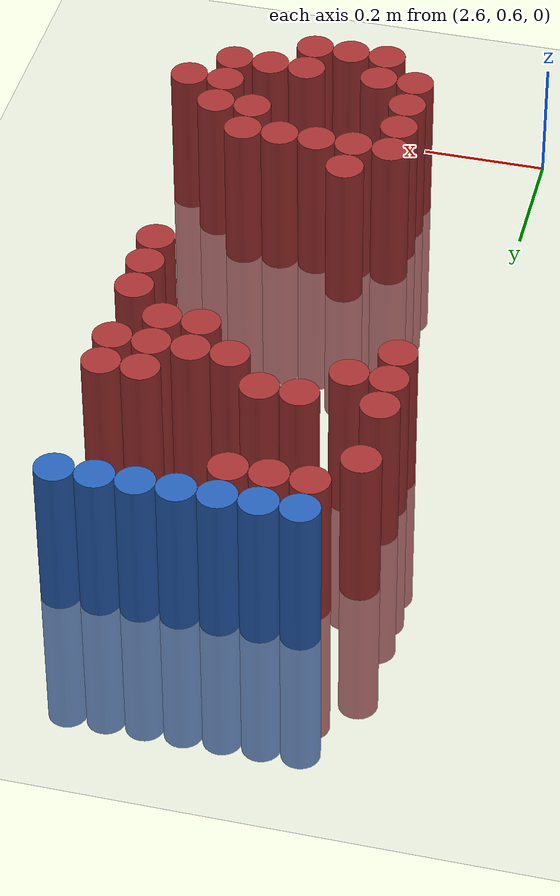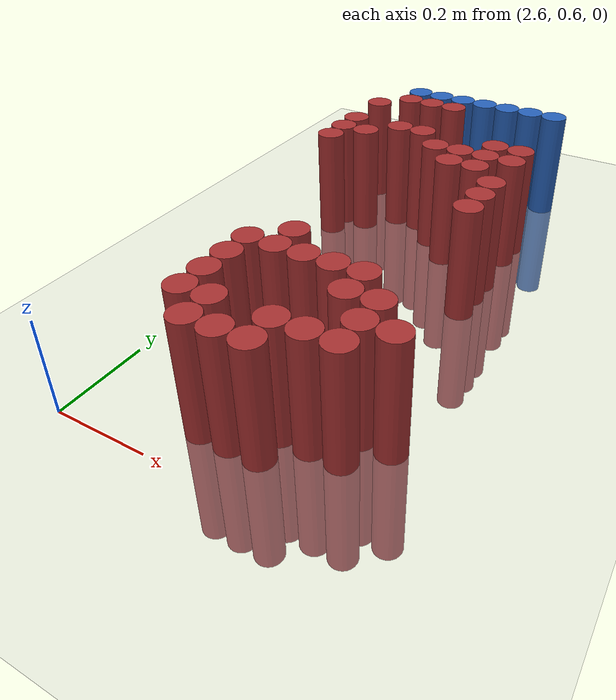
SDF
<sdf version="1.6">
 <world name="default">
  <model name="ground_plane">
   <static>1</static>
   <link name="link">
    <collision name="collision">
     <geometry><plane><normal>0 0 1</normal><size>100 100</size></plane></geometry>
     <surface><friction><ode><mu>100</mu><mu2>50</mu2></ode></friction></surface>
    </collision>
    <visual name="visual">
     <cast_shadows>0</cast_shadows>
     <geometry><plane><normal>0 0 1</normal><size>100 100</size></plane></geometry>
     <material>
      <script><uri>file://media/materials/scripts/gazebo.material</uri><name>Gazebo/Grey</name></script>
     </material>
    </visual>
   </link>
  </model>
  <model name="unit_cylinder_106">
   <static>1</static>
   <pose>2.730000 1.770000 0.000000 0.000000 0.000000 0.000000</pose>
   <link name="link">
    <inertial>
     <mass>1</mass>
     <inertia><ixx>0.145833</ixx><ixy>0</ixy><ixz>0</ixz><iyy>0.145833</iyy><iyz>0</iyz><izz>0.125</izz></inertia>
    </inertial>
    <collision name="collision">
     <geometry><cylinder><radius>0.030000</radius><length>0.5</length></cylinder></geometry>
    </collision>
    <visual name="visual">
     <geometry><cylinder><radius>0.030000</radius><length>0.5</length></cylinder></geometry>
     <material>
      <ambient>0.152000 0.379000 0.720000 1</ambient>
      <diffuse>0.152000 0.379000 0.720000 1</diffuse>
     </material>
     <material>
      <script><name>Gazebo/Grey</name><uri>file://media/materials/scripts/gazebo.material</uri></script>
     </material>
    </visual>
   </link>
  </model>
  <model name="unit_cylinder_107">
   <static>1</static>
   <pose>2.790000 1.770000 0.000000 0.000000 0.000000 0.000000</pose>
   <link name="link">
    <inertial>
     <mass>1</mass>
     <inertia><ixx>0.145833</ixx><ixy>0</ixy><ixz>0</ixz><iyy>0.145833</iyy><iyz>0</iyz><izz>0.125</izz></inertia>
    </inertial>
    <collision name="collision">
     <geometry><cylinder><radius>0.030000</radius><length>0.5</length></cylinder></geometry>
    </collision>
    <visual name="visual">
     <geometry><cylinder><radius>0.030000</radius><length>0.5</length></cylinder></geometry>
     <material>
      <ambient>0.152000 0.379000 0.720000 1</ambient>
      <diffuse>0.152000 0.379000 0.720000 1</diffuse>
     </material>
     <material>
      <script><name>Gazebo/Grey</name><uri>file://media/materials/scripts/gazebo.material</uri></script>
     </material>
    </visual>
   </link>
  </model>
  <model name="unit_cylinder_108">
   <static>1</static>
   <pose>2.850000 1.770000 0.000000 0.000000 0.000000 0.000000</pose>
   <link name="link">
    <inertial>
     <mass>1</mass>
     <inertia><ixx>0.145833</ixx><ixy>0</ixy><ixz>0</ixz><iyy>0.145833</iyy><iyz>0</iyz><izz>0.125</izz></inertia>
    </inertial>
    <collision name="collision">
     <geometry><cylinder><radius>0.030000</radius><length>0.5</length></cylinder></geometry>
    </collision>
    <visual name="visual">
     <geometry><cylinder><radius>0.030000</radius><length>0.5</length></cylinder></geometry>
     <material>
      <ambient>0.152000 0.379000 0.720000 1</ambient>
      <diffuse>0.152000 0.379000 0.720000 1</diffuse>
     </material>
     <material>
      <script><name>Gazebo/Grey</name><uri>file://media/materials/scripts/gazebo.material</uri></script>
     </material>
    </visual>
   </link>
  </model>
  <model name="unit_cylinder_109">
   <static>1</static>
   <pose>2.910000 1.770000 0.000000 0.000000 0.000000 0.000000</pose>
   <link name="link">
    <inertial>
     <mass>1</mass>
     <inertia><ixx>0.145833</ixx><ixy>0</ixy><ixz>0</ixz><iyy>0.145833</iyy><iyz>0</iyz><izz>0.125</izz></inertia>
    </inertial>
    <collision name="collision">
     <geometry><cylinder><radius>0.030000</radius><length>0.5</length></cylinder></geometry>
    </collision>
    <visual name="visual">
     <geometry><cylinder><radius>0.030000</radius><length>0.5</length></cylinder></geometry>
     <material>
      <ambient>0.152000 0.379000 0.720000 1</ambient>
      <diffuse>0.152000 0.379000 0.720000 1</diffuse>
     </material>
     <material>
      <script><name>Gazebo/Grey</name><uri>file://media/materials/scripts/gazebo.material</uri></script>
     </material>
    </visual>
   </link>
  </model>
  <model name="unit_cylinder_110">
   <static>1</static>
   <pose>2.970000 1.770000 0.000000 0.000000 0.000000 0.000000</pose>
   <link name="link">
    <inertial>
     <mass>1</mass>
     <inertia><ixx>0.145833</ixx><ixy>0</ixy><ixz>0</ixz><iyy>0.145833</iyy><iyz>0</iyz><izz>0.125</izz></inertia>
    </inertial>
    <collision name="collision">
     <geometry><cylinder><radius>0.030000</radius><length>0.5</length></cylinder></geometry>
    </collision>
    <visual name="visual">
     <geometry><cylinder><radius>0.030000</radius><length>0.5</length></cylinder></geometry>
     <material>
      <ambient>0.152000 0.379000 0.720000 1</ambient>
      <diffuse>0.152000 0.379000 0.720000 1</diffuse>
     </material>
     <material>
      <script><name>Gazebo/Grey</name><uri>file://media/materials/scripts/gazebo.material</uri></script>
     </material>
    </visual>
   </link>
  </model>
  <model name="unit_cylinder_111">
   <static>1</static>
   <pose>3.030000 1.770000 0.000000 0.000000 0.000000 0.000000</pose>
   <link name="link">
    <inertial>
     <mass>1</mass>
     <inertia><ixx>0.145833</ixx><ixy>0</ixy><ixz>0</ixz><iyy>0.145833</iyy><iyz>0</iyz><izz>0.125</izz></inertia>
    </inertial>
    <collision name="collision">
     <geometry><cylinder><radius>0.030000</radius><length>0.5</length></cylinder></geometry>
    </collision>
    <visual name="visual">
     <geometry><cylinder><radius>0.030000</radius><length>0.5</length></cylinder></geometry>
     <material>
      <ambient>0.152000 0.379000 0.720000 1</ambient>
      <diffuse>0.152000 0.379000 0.720000 1</diffuse>
     </material>
     <material>
      <script><name>Gazebo/Grey</name><uri>file://media/materials/scripts/gazebo.material</uri></script>
     </material>
    </visual>
   </link>
  </model>
  <model name="unit_cylinder_112">
   <static>1</static>
   <pose>3.090000 1.770000 0.000000 0.000000 0.000000 0.000000</pose>
   <link name="link">
    <inertial>
     <mass>1</mass>
     <inertia><ixx>0.145833</ixx><ixy>0</ixy><ixz>0</ixz><iyy>0.145833</iyy><iyz>0</iyz><izz>0.125</izz></inertia>
    </inertial>
    <collision name="collision">
     <geometry><cylinder><radius>0.030000</radius><length>0.5</length></cylinder></geometry>
    </collision>
    <visual name="visual">
     <geometry><cylinder><radius>0.030000</radius><length>0.5</length></cylinder></geometry>
     <material>
      <ambient>0.152000 0.379000 0.720000 1</ambient>
      <diffuse>0.152000 0.379000 0.720000 1</diffuse>
     </material>
     <material>
      <script><name>Gazebo/Grey</name><uri>file://media/materials/scripts/gazebo.material</uri></script>
     </material>
    </visual>
   </link>
  </model>
  <model name="unit_cylinder_129">
   <static>1</static>
   <pose>2.730000 1.710000 0.000000 0.000000 0.000000 0.000000</pose>
   <link name="link">
    <inertial>
     <mass>1</mass>
     <inertia><ixx>0.145833</ixx><ixy>0</ixy><ixz>0</ixz><iyy>0.145833</iyy><iyz>0</iyz><izz>0.125</izz></inertia>
    </inertial>
    <collision name="collision">
     <geometry><cylinder><radius>0.030000</radius><length>0.5</length></cylinder></geometry>
    </collision>
    <visual name="visual">
     <geometry><cylinder><radius>0.030000</radius><length>0.5</length></cylinder></geometry>
     <material>
      <ambient>0.648000 0.192000 0.192000 1</ambient>
      <diffuse>0.648000 0.192000 0.192000 1</diffuse>
     </material>
     <material>
      <script><name>Gazebo/Grey</name><uri>file://media/materials/scripts/gazebo.material</uri></script>
     </material>
    </visual>
   </link>
  </model>
  <model name="unit_cylinder_130">
   <static>1</static>
   <pose>2.790000 1.710000 0.000000 0.000000 0.000000 0.000000</pose>
   <link name="link">
    <inertial>
     <mass>1</mass>
     <inertia><ixx>0.145833</ixx><ixy>0</ixy><ixz>0</ixz><iyy>0.145833</iyy><iyz>0</iyz><izz>0.125</izz></inertia>
    </inertial>
    <collision name="collision">
     <geometry><cylinder><radius>0.030000</radius><length>0.5</length></cylinder></geometry>
    </collision>
    <visual name="visual">
     <geometry><cylinder><radius>0.030000</radius><length>0.5</length></cylinder></geometry>
     <material>
      <ambient>0.648000 0.192000 0.192000 1</ambient>
      <diffuse>0.648000 0.192000 0.192000 1</diffuse>
     </material>
     <material>
      <script><name>Gazebo/Grey</name><uri>file://media/materials/scripts/gazebo.material</uri></script>
     </material>
    </visual>
   </link>
  </model>
  <model name="unit_cylinder_131">
   <static>1</static>
   <pose>2.850000 1.710000 0.000000 0.000000 0.000000 0.000000</pose>
   <link name="link">
    <inertial>
     <mass>1</mass>
     <inertia><ixx>0.145833</ixx><ixy>0</ixy><ixz>0</ixz><iyy>0.145833</iyy><iyz>0</iyz><izz>0.125</izz></inertia>
    </inertial>
    <collision name="collision">
     <geometry><cylinder><radius>0.030000</radius><length>0.5</length></cylinder></geometry>
    </collision>
    <visual name="visual">
     <geometry><cylinder><radius>0.030000</radius><length>0.5</length></cylinder></geometry>
     <material>
      <ambient>0.648000 0.192000 0.192000 1</ambient>
      <diffuse>0.648000 0.192000 0.192000 1</diffuse>
     </material>
     <material>
      <script><name>Gazebo/Grey</name><uri>file://media/materials/scripts/gazebo.material</uri></script>
     </material>
    </visual>
   </link>
  </model>
  <model name="unit_cylinder_141">
   <static>1</static>
   <pose>2.670000 1.650000 0.000000 0.000000 0.000000 0.000000</pose>
   <link name="link">
    <inertial>
     <mass>1</mass>
     <inertia><ixx>0.145833</ixx><ixy>0</ixy><ixz>0</ixz><iyy>0.145833</iyy><iyz>0</iyz><izz>0.125</izz></inertia>
    </inertial>
    <collision name="collision">
     <geometry><cylinder><radius>0.030000</radius><length>0.5</length></cylinder></geometry>
    </collision>
    <visual name="visual">
     <geometry><cylinder><radius>0.030000</radius><length>0.5</length></cylinder></geometry>
     <material>
      <ambient>0.648000 0.192000 0.192000 1</ambient>
      <diffuse>0.648000 0.192000 0.192000 1</diffuse>
     </material>
     <material>
      <script><name>Gazebo/Grey</name><uri>file://media/materials/scripts/gazebo.material</uri></script>
     </material>
    </visual>
   </link>
  </model>
  <model name="unit_cylinder_148">
   <static>1</static>
   <pose>2.670000 1.530000 0.000000 0.000000 0.000000 0.000000</pose>
   <link name="link">
    <inertial>
     <mass>1</mass>
     <inertia><ixx>0.145833</ixx><ixy>0</ixy><ixz>0</ixz><iyy>0.145833</iyy><iyz>0</iyz><izz>0.125</izz></inertia>
    </inertial>
    <collision name="collision">
     <geometry><cylinder><radius>0.030000</radius><length>0.5</length></cylinder></geometry>
    </collision>
    <visual name="visual">
     <geometry><cylinder><radius>0.030000</radius><length>0.5</length></cylinder></geometry>
     <material>
      <ambient>0.648000 0.192000 0.192000 1</ambient>
      <diffuse>0.648000 0.192000 0.192000 1</diffuse>
     </material>
     <material>
      <script><name>Gazebo/Grey</name><uri>file://media/materials/scripts/gazebo.material</uri></script>
     </material>
    </visual>
   </link>
  </model>
  <model name="unit_cylinder_149">
   <static>1</static>
   <pose>2.790000 1.530000 0.000000 0.000000 0.000000 0.000000</pose>
   <link name="link">
    <inertial>
     <mass>1</mass>
     <inertia><ixx>0.145833</ixx><ixy>0</ixy><ixz>0</ixz><iyy>0.145833</iyy><iyz>0</iyz><izz>0.125</izz></inertia>
    </inertial>
    <collision name="collision">
     <geometry><cylinder><radius>0.030000</radius><length>0.5</length></cylinder></geometry>
    </collision>
    <visual name="visual">
     <geometry><cylinder><radius>0.030000</radius><length>0.5</length></cylinder></geometry>
     <material>
      <ambient>0.648000 0.192000 0.192000 1</ambient>
      <diffuse>0.648000 0.192000 0.192000 1</diffuse>
     </material>
     <material>
      <script><name>Gazebo/Grey</name><uri>file://media/materials/scripts/gazebo.material</uri></script>
     </material>
    </visual>
   </link>
  </model>
  <model name="unit_cylinder_150">
   <static>1</static>
   <pose>2.850000 1.530000 0.000000 0.000000 0.000000 0.000000</pose>
   <link name="link">
    <inertial>
     <mass>1</mass>
     <inertia><ixx>0.145833</ixx><ixy>0</ixy><ixz>0</ixz><iyy>0.145833</iyy><iyz>0</iyz><izz>0.125</izz></inertia>
    </inertial>
    <collision name="collision">
     <geometry><cylinder><radius>0.030000</radius><length>0.5</length></cylinder></geometry>
    </collision>
    <visual name="visual">
     <geometry><cylinder><radius>0.030000</radius><length>0.5</length></cylinder></geometry>
     <material>
      <ambient>0.648000 0.192000 0.192000 1</ambient>
      <diffuse>0.648000 0.192000 0.192000 1</diffuse>
     </material>
     <material>
      <script><name>Gazebo/Grey</name><uri>file://media/materials/scripts/gazebo.material</uri></script>
     </material>
    </visual>
   </link>
  </model>
  <model name="unit_cylinder_151">
   <static>1</static>
   <pose>3.030000 1.530000 0.000000 0.000000 0.000000 0.000000</pose>
   <link name="link">
    <inertial>
     <mass>1</mass>
     <inertia><ixx>0.145833</ixx><ixy>0</ixy><ixz>0</ixz><iyy>0.145833</iyy><iyz>0</iyz><izz>0.125</izz></inertia>
    </inertial>
    <collision name="collision">
     <geometry><cylinder><radius>0.030000</radius><length>0.5</length></cylinder></geometry>
    </collision>
    <visual name="visual">
     <geometry><cylinder><radius>0.030000</radius><length>0.5</length></cylinder></geometry>
     <material>
      <ambient>0.648000 0.192000 0.192000 1</ambient>
      <diffuse>0.648000 0.192000 0.192000 1</diffuse>
     </material>
     <material>
      <script><name>Gazebo/Grey</name><uri>file://media/materials/scripts/gazebo.material</uri></script>
     </material>
    </visual>
   </link>
  </model>
  <model name="unit_cylinder_152">
   <static>1</static>
   <pose>3.090000 1.530000 0.000000 0.000000 0.000000 0.000000</pose>
   <link name="link">
    <inertial>
     <mass>1</mass>
     <inertia><ixx>0.145833</ixx><ixy>0</ixy><ixz>0</ixz><iyy>0.145833</iyy><iyz>0</iyz><izz>0.125</izz></inertia>
    </inertial>
    <collision name="collision">
     <geometry><cylinder><radius>0.030000</radius><length>0.5</length></cylinder></geometry>
    </collision>
    <visual name="visual">
     <geometry><cylinder><radius>0.030000</radius><length>0.5</length></cylinder></geometry>
     <material>
      <ambient>0.648000 0.192000 0.192000 1</ambient>
      <diffuse>0.648000 0.192000 0.192000 1</diffuse>
     </material>
     <material>
      <script><name>Gazebo/Grey</name><uri>file://media/materials/scripts/gazebo.material</uri></script>
     </material>
    </visual>
   </link>
  </model>
  <model name="unit_cylinder_160">
   <static>1</static>
   <pose>2.670000 1.470000 0.000000 0.000000 0.000000 0.000000</pose>
   <link name="link">
    <inertial>
     <mass>1</mass>
     <inertia><ixx>0.145833</ixx><ixy>0</ixy><ixz>0</ixz><iyy>0.145833</iyy><iyz>0</iyz><izz>0.125</izz></inertia>
    </inertial>
    <collision name="collision">
     <geometry><cylinder><radius>0.030000</radius><length>0.5</length></cylinder></geometry>
    </collision>
    <visual name="visual">
     <geometry><cylinder><radius>0.030000</radius><length>0.5</length></cylinder></geometry>
     <material>
      <ambient>0.648000 0.192000 0.192000 1</ambient>
      <diffuse>0.648000 0.192000 0.192000 1</diffuse>
     </material>
     <material>
      <script><name>Gazebo/Grey</name><uri>file://media/materials/scripts/gazebo.material</uri></script>
     </material>
    </visual>
   </link>
  </model>
  <model name="unit_cylinder_161">
   <static>1</static>
   <pose>2.730000 1.470000 0.000000 0.000000 0.000000 0.000000</pose>
   <link name="link">
    <inertial>
     <mass>1</mass>
     <inertia><ixx>0.145833</ixx><ixy>0</ixy><ixz>0</ixz><iyy>0.145833</iyy><iyz>0</iyz><izz>0.125</izz></inertia>
    </inertial>
    <collision name="collision">
     <geometry><cylinder><radius>0.030000</radius><length>0.5</length></cylinder></geometry>
    </collision>
    <visual name="visual">
     <geometry><cylinder><radius>0.030000</radius><length>0.5</length></cylinder></geometry>
     <material>
      <ambient>0.648000 0.192000 0.192000 1</ambient>
      <diffuse>0.648000 0.192000 0.192000 1</diffuse>
     </material>
     <material>
      <script><name>Gazebo/Grey</name><uri>file://media/materials/scripts/gazebo.material</uri></script>
     </material>
    </visual>
   </link>
  </model>
  <model name="unit_cylinder_162">
   <static>1</static>
   <pose>2.910000 1.470000 0.000000 0.000000 0.000000 0.000000</pose>
   <link name="link">
    <inertial>
     <mass>1</mass>
     <inertia><ixx>0.145833</ixx><ixy>0</ixy><ixz>0</ixz><iyy>0.145833</iyy><iyz>0</iyz><izz>0.125</izz></inertia>
    </inertial>
    <collision name="collision">
     <geometry><cylinder><radius>0.030000</radius><length>0.5</length></cylinder></geometry>
    </collision>
    <visual name="visual">
     <geometry><cylinder><radius>0.030000</radius><length>0.5</length></cylinder></geometry>
     <material>
      <ambient>0.648000 0.192000 0.192000 1</ambient>
      <diffuse>0.648000 0.192000 0.192000 1</diffuse>
     </material>
     <material>
      <script><name>Gazebo/Grey</name><uri>file://media/materials/scripts/gazebo.material</uri></script>
     </material>
    </visual>
   </link>
  </model>
  <model name="unit_cylinder_163">
   <static>1</static>
   <pose>2.970000 1.470000 0.000000 0.000000 0.000000 0.000000</pose>
   <link name="link">
    <inertial>
     <mass>1</mass>
     <inertia><ixx>0.145833</ixx><ixy>0</ixy><ixz>0</ixz><iyy>0.145833</iyy><iyz>0</iyz><izz>0.125</izz></inertia>
    </inertial>
    <collision name="collision">
     <geometry><cylinder><radius>0.030000</radius><length>0.5</length></cylinder></geometry>
    </collision>
    <visual name="visual">
     <geometry><cylinder><radius>0.030000</radius><length>0.5</length></cylinder></geometry>
     <material>
      <ambient>0.648000 0.192000 0.192000 1</ambient>
      <diffuse>0.648000 0.192000 0.192000 1</diffuse>
     </material>
     <material>
      <script><name>Gazebo/Grey</name><uri>file://media/materials/scripts/gazebo.material</uri></script>
     </material>
    </visual>
   </link>
  </model>
  <model name="unit_cylinder_164">
   <static>1</static>
   <pose>3.030000 1.470000 0.000000 0.000000 0.000000 0.000000</pose>
   <link name="link">
    <inertial>
     <mass>1</mass>
     <inertia><ixx>0.145833</ixx><ixy>0</ixy><ixz>0</ixz><iyy>0.145833</iyy><iyz>0</iyz><izz>0.125</izz></inertia>
    </inertial>
    <collision name="collision">
     <geometry><cylinder><radius>0.030000</radius><length>0.5</length></cylinder></geometry>
    </collision>
    <visual name="visual">
     <geometry><cylinder><radius>0.030000</radius><length>0.5</length></cylinder></geometry>
     <material>
      <ambient>0.648000 0.192000 0.192000 1</ambient>
      <diffuse>0.648000 0.192000 0.192000 1</diffuse>
     </material>
     <material>
      <script><name>Gazebo/Grey</name><uri>file://media/materials/scripts/gazebo.material</uri></script>
     </material>
    </visual>
   </link>
  </model>
  <model name="unit_cylinder_165">
   <static>1</static>
   <pose>3.090000 1.470000 0.000000 0.000000 0.000000 0.000000</pose>
   <link name="link">
    <inertial>
     <mass>1</mass>
     <inertia><ixx>0.145833</ixx><ixy>0</ixy><ixz>0</ixz><iyy>0.145833</iyy><iyz>0</iyz><izz>0.125</izz></inertia>
    </inertial>
    <collision name="collision">
     <geometry><cylinder><radius>0.030000</radius><length>0.5</length></cylinder></geometry>
    </collision>
    <visual name="visual">
     <geometry><cylinder><radius>0.030000</radius><length>0.5</length></cylinder></geometry>
     <material>
      <ambient>0.648000 0.192000 0.192000 1</ambient>
      <diffuse>0.648000 0.192000 0.192000 1</diffuse>
     </material>
     <material>
      <script><name>Gazebo/Grey</name><uri>file://media/materials/scripts/gazebo.material</uri></script>
     </material>
    </visual>
   </link>
  </model>
  <model name="unit_cylinder_171">
   <static>1</static>
   <pose>2.670000 1.410000 0.000000 0.000000 0.000000 0.000000</pose>
   <link name="link">
    <inertial>
     <mass>1</mass>
     <inertia><ixx>0.145833</ixx><ixy>0</ixy><ixz>0</ixz><iyy>0.145833</iyy><iyz>0</iyz><izz>0.125</izz></inertia>
    </inertial>
    <collision name="collision">
     <geometry><cylinder><radius>0.030000</radius><length>0.5</length></cylinder></geometry>
    </collision>
    <visual name="visual">
     <geometry><cylinder><radius>0.030000</radius><length>0.5</length></cylinder></geometry>
     <material>
      <ambient>0.648000 0.192000 0.192000 1</ambient>
      <diffuse>0.648000 0.192000 0.192000 1</diffuse>
     </material>
     <material>
      <script><name>Gazebo/Grey</name><uri>file://media/materials/scripts/gazebo.material</uri></script>
     </material>
    </visual>
   </link>
  </model>
  <model name="unit_cylinder_172">
   <static>1</static>
   <pose>2.970000 1.410000 0.000000 0.000000 0.000000 0.000000</pose>
   <link name="link">
    <inertial>
     <mass>1</mass>
     <inertia><ixx>0.145833</ixx><ixy>0</ixy><ixz>0</ixz><iyy>0.145833</iyy><iyz>0</iyz><izz>0.125</izz></inertia>
    </inertial>
    <collision name="collision">
     <geometry><cylinder><radius>0.030000</radius><length>0.5</length></cylinder></geometry>
    </collision>
    <visual name="visual">
     <geometry><cylinder><radius>0.030000</radius><length>0.5</length></cylinder></geometry>
     <material>
      <ambient>0.648000 0.192000 0.192000 1</ambient>
      <diffuse>0.648000 0.192000 0.192000 1</diffuse>
     </material>
     <material>
      <script><name>Gazebo/Grey</name><uri>file://media/materials/scripts/gazebo.material</uri></script>
     </material>
    </visual>
   </link>
  </model>
  <model name="unit_cylinder_173">
   <static>1</static>
   <pose>3.030000 1.410000 0.000000 0.000000 0.000000 0.000000</pose>
   <link name="link">
    <inertial>
     <mass>1</mass>
     <inertia><ixx>0.145833</ixx><ixy>0</ixy><ixz>0</ixz><iyy>0.145833</iyy><iyz>0</iyz><izz>0.125</izz></inertia>
    </inertial>
    <collision name="collision">
     <geometry><cylinder><radius>0.030000</radius><length>0.5</length></cylinder></geometry>
    </collision>
    <visual name="visual">
     <geometry><cylinder><radius>0.030000</radius><length>0.5</length></cylinder></geometry>
     <material>
      <ambient>0.648000 0.192000 0.192000 1</ambient>
      <diffuse>0.648000 0.192000 0.192000 1</diffuse>
     </material>
     <material>
      <script><name>Gazebo/Grey</name><uri>file://media/materials/scripts/gazebo.material</uri></script>
     </material>
    </visual>
   </link>
  </model>
  <model name="unit_cylinder_175">
   <static>1</static>
   <pose>3.090000 1.350000 0.000000 0.000000 0.000000 0.000000</pose>
   <link name="link">
    <inertial>
     <mass>1</mass>
     <inertia><ixx>0.145833</ixx><ixy>0</ixy><ixz>0</ixz><iyy>0.145833</iyy><iyz>0</iyz><izz>0.125</izz></inertia>
    </inertial>
    <collision name="collision">
     <geometry><cylinder><radius>0.030000</radius><length>0.5</length></cylinder></geometry>
    </collision>
    <visual name="visual">
     <geometry><cylinder><radius>0.030000</radius><length>0.5</length></cylinder></geometry>
     <material>
      <ambient>0.648000 0.192000 0.192000 1</ambient>
      <diffuse>0.648000 0.192000 0.192000 1</diffuse>
     </material>
     <material>
      <script><name>Gazebo/Grey</name><uri>file://media/materials/scripts/gazebo.material</uri></script>
     </material>
    </visual>
   </link>
  </model>
  <model name="unit_cylinder_178">
   <static>1</static>
   <pose>3.090000 1.290000 0.000000 0.000000 0.000000 0.000000</pose>
   <link name="link">
    <inertial>
     <mass>1</mass>
     <inertia><ixx>0.145833</ixx><ixy>0</ixy><ixz>0</ixz><iyy>0.145833</iyy><iyz>0</iyz><izz>0.125</izz></inertia>
    </inertial>
    <collision name="collision">
     <geometry><cylinder><radius>0.030000</radius><length>0.5</length></cylinder></geometry>
    </collision>
    <visual name="visual">
     <geometry><cylinder><radius>0.030000</radius><length>0.5</length></cylinder></geometry>
     <material>
      <ambient>0.648000 0.192000 0.192000 1</ambient>
      <diffuse>0.648000 0.192000 0.192000 1</diffuse>
     </material>
     <material>
      <script><name>Gazebo/Grey</name><uri>file://media/materials/scripts/gazebo.material</uri></script>
     </material>
    </visual>
   </link>
  </model>
  <model name="unit_cylinder_182">
   <static>1</static>
   <pose>3.090000 1.230000 0.000000 0.000000 0.000000 0.000000</pose>
   <link name="link">
    <inertial>
     <mass>1</mass>
     <inertia><ixx>0.145833</ixx><ixy>0</ixy><ixz>0</ixz><iyy>0.145833</iyy><iyz>0</iyz><izz>0.125</izz></inertia>
    </inertial>
    <collision name="collision">
     <geometry><cylinder><radius>0.030000</radius><length>0.5</length></cylinder></geometry>
    </collision>
    <visual name="visual">
     <geometry><cylinder><radius>0.030000</radius><length>0.5</length></cylinder></geometry>
     <material>
      <ambient>0.648000 0.192000 0.192000 1</ambient>
      <diffuse>0.648000 0.192000 0.192000 1</diffuse>
     </material>
     <material>
      <script><name>Gazebo/Grey</name><uri>file://media/materials/scripts/gazebo.material</uri></script>
     </material>
    </visual>
   </link>
  </model>
  <model name="unit_cylinder_192">
   <static>1</static>
   <pose>2.850000 0.990000 0.000000 0.000000 0.000000 0.000000</pose>
   <link name="link">
    <inertial>
     <mass>1</mass>
     <inertia><ixx>0.145833</ixx><ixy>0</ixy><ixz>0</ixz><iyy>0.145833</iyy><iyz>0</iyz><izz>0.125</izz></inertia>
    </inertial>
    <collision name="collision">
     <geometry><cylinder><radius>0.030000</radius><length>0.5</length></cylinder></geometry>
    </collision>
    <visual name="visual">
     <geometry><cylinder><radius>0.030000</radius><length>0.5</length></cylinder></geometry>
     <material>
      <ambient>0.648000 0.192000 0.192000 1</ambient>
      <diffuse>0.648000 0.192000 0.192000 1</diffuse>
     </material>
     <material>
      <script><name>Gazebo/Grey</name><uri>file://media/materials/scripts/gazebo.material</uri></script>
     </material>
    </visual>
   </link>
  </model>
  <model name="unit_cylinder_194">
   <static>1</static>
   <pose>2.790000 0.930000 0.000000 0.000000 0.000000 0.000000</pose>
   <link name="link">
    <inertial>
     <mass>1</mass>
     <inertia><ixx>0.145833</ixx><ixy>0</ixy><ixz>0</ixz><iyy>0.145833</iyy><iyz>0</iyz><izz>0.125</izz></inertia>
    </inertial>
    <collision name="collision">
     <geometry><cylinder><radius>0.030000</radius><length>0.5</length></cylinder></geometry>
    </collision>
    <visual name="visual">
     <geometry><cylinder><radius>0.030000</radius><length>0.5</length></cylinder></geometry>
     <material>
      <ambient>0.648000 0.192000 0.192000 1</ambient>
      <diffuse>0.648000 0.192000 0.192000 1</diffuse>
     </material>
     <material>
      <script><name>Gazebo/Grey</name><uri>file://media/materials/scripts/gazebo.material</uri></script>
     </material>
    </visual>
   </link>
  </model>
  <model name="unit_cylinder_195">
   <static>1</static>
   <pose>2.850000 0.930000 0.000000 0.000000 0.000000 0.000000</pose>
   <link name="link">
    <inertial>
     <mass>1</mass>
     <inertia><ixx>0.145833</ixx><ixy>0</ixy><ixz>0</ixz><iyy>0.145833</iyy><iyz>0</iyz><izz>0.125</izz></inertia>
    </inertial>
    <collision name="collision">
     <geometry><cylinder><radius>0.030000</radius><length>0.5</length></cylinder></geometry>
    </collision>
    <visual name="visual">
     <geometry><cylinder><radius>0.030000</radius><length>0.5</length></cylinder></geometry>
     <material>
      <ambient>0.648000 0.192000 0.192000 1</ambient>
      <diffuse>0.648000 0.192000 0.192000 1</diffuse>
     </material>
     <material>
      <script><name>Gazebo/Grey</name><uri>file://media/materials/scripts/gazebo.material</uri></script>
     </material>
    </visual>
   </link>
  </model>
  <model name="unit_cylinder_196">
   <static>1</static>
   <pose>2.910000 0.930000 0.000000 0.000000 0.000000 0.000000</pose>
   <link name="link">
    <inertial>
     <mass>1</mass>
     <inertia><ixx>0.145833</ixx><ixy>0</ixy><ixz>0</ixz><iyy>0.145833</iyy><iyz>0</iyz><izz>0.125</izz></inertia>
    </inertial>
    <collision name="collision">
     <geometry><cylinder><radius>0.030000</radius><length>0.5</length></cylinder></geometry>
    </collision>
    <visual name="visual">
     <geometry><cylinder><radius>0.030000</radius><length>0.5</length></cylinder></geometry>
     <material>
      <ambient>0.648000 0.192000 0.192000 1</ambient>
      <diffuse>0.648000 0.192000 0.192000 1</diffuse>
     </material>
     <material>
      <script><name>Gazebo/Grey</name><uri>file://media/materials/scripts/gazebo.material</uri></script>
     </material>
    </visual>
   </link>
  </model>
  <model name="unit_cylinder_197">
   <static>1</static>
   <pose>2.970000 0.930000 0.000000 0.000000 0.000000 0.000000</pose>
   <link name="link">
    <inertial>
     <mass>1</mass>
     <inertia><ixx>0.145833</ixx><ixy>0</ixy><ixz>0</ixz><iyy>0.145833</iyy><iyz>0</iyz><izz>0.125</izz></inertia>
    </inertial>
    <collision name="collision">
     <geometry><cylinder><radius>0.030000</radius><length>0.5</length></cylinder></geometry>
    </collision>
    <visual name="visual">
     <geometry><cylinder><radius>0.030000</radius><length>0.5</length></cylinder></geometry>
     <material>
      <ambient>0.648000 0.192000 0.192000 1</ambient>
      <diffuse>0.648000 0.192000 0.192000 1</diffuse>
     </material>
     <material>
      <script><name>Gazebo/Grey</name><uri>file://media/materials/scripts/gazebo.material</uri></script>
     </material>
    </visual>
   </link>
  </model>
  <model name="unit_cylinder_198">
   <static>1</static>
   <pose>3.030000 0.930000 0.000000 0.000000 0.000000 0.000000</pose>
   <link name="link">
    <inertial>
     <mass>1</mass>
     <inertia><ixx>0.145833</ixx><ixy>0</ixy><ixz>0</ixz><iyy>0.145833</iyy><iyz>0</iyz><izz>0.125</izz></inertia>
    </inertial>
    <collision name="collision">
     <geometry><cylinder><radius>0.030000</radius><length>0.5</length></cylinder></geometry>
    </collision>
    <visual name="visual">
     <geometry><cylinder><radius>0.030000</radius><length>0.5</length></cylinder></geometry>
     <material>
      <ambient>0.648000 0.192000 0.192000 1</ambient>
      <diffuse>0.648000 0.192000 0.192000 1</diffuse>
     </material>
     <material>
      <script><name>Gazebo/Grey</name><uri>file://media/materials/scripts/gazebo.material</uri></script>
     </material>
    </visual>
   </link>
  </model>
  <model name="unit_cylinder_202">
   <static>1</static>
   <pose>2.790000 0.870000 0.000000 0.000000 0.000000 0.000000</pose>
   <link name="link">
    <inertial>
     <mass>1</mass>
     <inertia><ixx>0.145833</ixx><ixy>0</ixy><ixz>0</ixz><iyy>0.145833</iyy><iyz>0</iyz><izz>0.125</izz></inertia>
    </inertial>
    <collision name="collision">
     <geometry><cylinder><radius>0.030000</radius><length>0.5</length></cylinder></geometry>
    </collision>
    <visual name="visual">
     <geometry><cylinder><radius>0.030000</radius><length>0.5</length></cylinder></geometry>
     <material>
      <ambient>0.648000 0.192000 0.192000 1</ambient>
      <diffuse>0.648000 0.192000 0.192000 1</diffuse>
     </material>
     <material>
      <script><name>Gazebo/Grey</name><uri>file://media/materials/scripts/gazebo.material</uri></script>
     </material>
    </visual>
   </link>
  </model>
  <model name="unit_cylinder_203">
   <static>1</static>
   <pose>3.030000 0.870000 0.000000 0.000000 0.000000 0.000000</pose>
   <link name="link">
    <inertial>
     <mass>1</mass>
     <inertia><ixx>0.145833</ixx><ixy>0</ixy><ixz>0</ixz><iyy>0.145833</iyy><iyz>0</iyz><izz>0.125</izz></inertia>
    </inertial>
    <collision name="collision">
     <geometry><cylinder><radius>0.030000</radius><length>0.5</length></cylinder></geometry>
    </collision>
    <visual name="visual">
     <geometry><cylinder><radius>0.030000</radius><length>0.5</length></cylinder></geometry>
     <material>
      <ambient>0.648000 0.192000 0.192000 1</ambient>
      <diffuse>0.648000 0.192000 0.192000 1</diffuse>
     </material>
     <material>
      <script><name>Gazebo/Grey</name><uri>file://media/materials/scripts/gazebo.material</uri></script>
     </material>
    </visual>
   </link>
  </model>
  <model name="unit_cylinder_204">
   <static>1</static>
   <pose>3.090000 0.870000 0.000000 0.000000 0.000000 0.000000</pose>
   <link name="link">
    <inertial>
     <mass>1</mass>
     <inertia><ixx>0.145833</ixx><ixy>0</ixy><ixz>0</ixz><iyy>0.145833</iyy><iyz>0</iyz><izz>0.125</izz></inertia>
    </inertial>
    <collision name="collision">
     <geometry><cylinder><radius>0.030000</radius><length>0.5</length></cylinder></geometry>
    </collision>
    <visual name="visual">
     <geometry><cylinder><radius>0.030000</radius><length>0.5</length></cylinder></geometry>
     <material>
      <ambient>0.648000 0.192000 0.192000 1</ambient>
      <diffuse>0.648000 0.192000 0.192000 1</diffuse>
     </material>
     <material>
      <script><name>Gazebo/Grey</name><uri>file://media/materials/scripts/gazebo.material</uri></script>
     </material>
    </visual>
   </link>
  </model>
  <model name="unit_cylinder_206">
   <static>1</static>
   <pose>2.790000 0.810000 0.000000 0.000000 0.000000 0.000000</pose>
   <link name="link">
    <inertial>
     <mass>1</mass>
     <inertia><ixx>0.145833</ixx><ixy>0</ixy><ixz>0</ixz><iyy>0.145833</iyy><iyz>0</iyz><izz>0.125</izz></inertia>
    </inertial>
    <collision name="collision">
     <geometry><cylinder><radius>0.030000</radius><length>0.5</length></cylinder></geometry>
    </collision>
    <visual name="visual">
     <geometry><cylinder><radius>0.030000</radius><length>0.5</length></cylinder></geometry>
     <material>
      <ambient>0.648000 0.192000 0.192000 1</ambient>
      <diffuse>0.648000 0.192000 0.192000 1</diffuse>
     </material>
     <material>
      <script><name>Gazebo/Grey</name><uri>file://media/materials/scripts/gazebo.material</uri></script>
     </material>
    </visual>
   </link>
  </model>
  <model name="unit_cylinder_207">
   <static>1</static>
   <pose>3.090000 0.810000 0.000000 0.000000 0.000000 0.000000</pose>
   <link name="link">
    <inertial>
     <mass>1</mass>
     <inertia><ixx>0.145833</ixx><ixy>0</ixy><ixz>0</ixz><iyy>0.145833</iyy><iyz>0</iyz><izz>0.125</izz></inertia>
    </inertial>
    <collision name="collision">
     <geometry><cylinder><radius>0.030000</radius><length>0.5</length></cylinder></geometry>
    </collision>
    <visual name="visual">
     <geometry><cylinder><radius>0.030000</radius><length>0.5</length></cylinder></geometry>
     <material>
      <ambient>0.648000 0.192000 0.192000 1</ambient>
      <diffuse>0.648000 0.192000 0.192000 1</diffuse>
     </material>
     <material>
      <script><name>Gazebo/Grey</name><uri>file://media/materials/scripts/gazebo.material</uri></script>
     </material>
    </visual>
   </link>
  </model>
  <model name="unit_cylinder_208">
   <static>1</static>
   <pose>3.150000 0.810000 0.000000 0.000000 0.000000 0.000000</pose>
   <link name="link">
    <inertial>
     <mass>1</mass>
     <inertia><ixx>0.145833</ixx><ixy>0</ixy><ixz>0</ixz><iyy>0.145833</iyy><iyz>0</iyz><izz>0.125</izz></inertia>
    </inertial>
    <collision name="collision">
     <geometry><cylinder><radius>0.030000</radius><length>0.5</length></cylinder></geometry>
    </collision>
    <visual name="visual">
     <geometry><cylinder><radius>0.030000</radius><length>0.5</length></cylinder></geometry>
     <material>
      <ambient>0.648000 0.192000 0.192000 1</ambient>
      <diffuse>0.648000 0.192000 0.192000 1</diffuse>
     </material>
     <material>
      <script><name>Gazebo/Grey</name><uri>file://media/materials/scripts/gazebo.material</uri></script>
     </material>
    </visual>
   </link>
  </model>
  <model name="unit_cylinder_209">
   <static>1</static>
   <pose>2.790000 0.750000 0.000000 0.000000 0.000000 0.000000</pose>
   <link name="link">
    <inertial>
     <mass>1</mass>
     <inertia><ixx>0.145833</ixx><ixy>0</ixy><ixz>0</ixz><iyy>0.145833</iyy><iyz>0</iyz><izz>0.125</izz></inertia>
    </inertial>
    <collision name="collision">
     <geometry><cylinder><radius>0.030000</radius><length>0.5</length></cylinder></geometry>
    </collision>
    <visual name="visual">
     <geometry><cylinder><radius>0.030000</radius><length>0.5</length></cylinder></geometry>
     <material>
      <ambient>0.648000 0.192000 0.192000 1</ambient>
      <diffuse>0.648000 0.192000 0.192000 1</diffuse>
     </material>
     <material>
      <script><name>Gazebo/Grey</name><uri>file://media/materials/scripts/gazebo.material</uri></script>
     </material>
    </visual>
   </link>
  </model>
  <model name="unit_cylinder_210">
   <static>1</static>
   <pose>2.850000 0.750000 0.000000 0.000000 0.000000 0.000000</pose>
   <link name="link">
    <inertial>
     <mass>1</mass>
     <inertia><ixx>0.145833</ixx><ixy>0</ixy><ixz>0</ixz><iyy>0.145833</iyy><iyz>0</iyz><izz>0.125</izz></inertia>
    </inertial>
    <collision name="collision">
     <geometry><cylinder><radius>0.030000</radius><length>0.5</length></cylinder></geometry>
    </collision>
    <visual name="visual">
     <geometry><cylinder><radius>0.030000</radius><length>0.5</length></cylinder></geometry>
     <material>
      <ambient>0.648000 0.192000 0.192000 1</ambient>
      <diffuse>0.648000 0.192000 0.192000 1</diffuse>
     </material>
     <material>
      <script><name>Gazebo/Grey</name><uri>file://media/materials/scripts/gazebo.material</uri></script>
     </material>
    </visual>
   </link>
  </model>
  <model name="unit_cylinder_211">
   <static>1</static>
   <pose>2.970000 0.750000 0.000000 0.000000 0.000000 0.000000</pose>
   <link name="link">
    <inertial>
     <mass>1</mass>
     <inertia><ixx>0.145833</ixx><ixy>0</ixy><ixz>0</ixz><iyy>0.145833</iyy><iyz>0</iyz><izz>0.125</izz></inertia>
    </inertial>
    <collision name="collision">
     <geometry><cylinder><radius>0.030000</radius><length>0.5</length></cylinder></geometry>
    </collision>
    <visual name="visual">
     <geometry><cylinder><radius>0.030000</radius><length>0.5</length></cylinder></geometry>
     <material>
      <ambient>0.648000 0.192000 0.192000 1</ambient>
      <diffuse>0.648000 0.192000 0.192000 1</diffuse>
     </material>
     <material>
      <script><name>Gazebo/Grey</name><uri>file://media/materials/scripts/gazebo.material</uri></script>
     </material>
    </visual>
   </link>
  </model>
  <model name="unit_cylinder_212">
   <static>1</static>
   <pose>3.030000 0.750000 0.000000 0.000000 0.000000 0.000000</pose>
   <link name="link">
    <inertial>
     <mass>1</mass>
     <inertia><ixx>0.145833</ixx><ixy>0</ixy><ixz>0</ixz><iyy>0.145833</iyy><iyz>0</iyz><izz>0.125</izz></inertia>
    </inertial>
    <collision name="collision">
     <geometry><cylinder><radius>0.030000</radius><length>0.5</length></cylinder></geometry>
    </collision>
    <visual name="visual">
     <geometry><cylinder><radius>0.030000</radius><length>0.5</length></cylinder></geometry>
     <material>
      <ambient>0.648000 0.192000 0.192000 1</ambient>
      <diffuse>0.648000 0.192000 0.192000 1</diffuse>
     </material>
     <material>
      <script><name>Gazebo/Grey</name><uri>file://media/materials/scripts/gazebo.material</uri></script>
     </material>
    </visual>
   </link>
  </model>
  <model name="unit_cylinder_213">
   <static>1</static>
   <pose>3.090000 0.750000 0.000000 0.000000 0.000000 0.000000</pose>
   <link name="link">
    <inertial>
     <mass>1</mass>
     <inertia><ixx>0.145833</ixx><ixy>0</ixy><ixz>0</ixz><iyy>0.145833</iyy><iyz>0</iyz><izz>0.125</izz></inertia>
    </inertial>
    <collision name="collision">
     <geometry><cylinder><radius>0.030000</radius><length>0.5</length></cylinder></geometry>
    </collision>
    <visual name="visual">
     <geometry><cylinder><radius>0.030000</radius><length>0.5</length></cylinder></geometry>
     <material>
      <ambient>0.648000 0.192000 0.192000 1</ambient>
      <diffuse>0.648000 0.192000 0.192000 1</diffuse>
     </material>
     <material>
      <script><name>Gazebo/Grey</name><uri>file://media/materials/scripts/gazebo.material</uri></script>
     </material>
    </visual>
   </link>
  </model>
  <model name="unit_cylinder_214">
   <static>1</static>
   <pose>2.850000 0.690000 0.000000 0.000000 0.000000 0.000000</pose>
   <link name="link">
    <inertial>
     <mass>1</mass>
     <inertia><ixx>0.145833</ixx><ixy>0</ixy><ixz>0</ixz><iyy>0.145833</iyy><iyz>0</iyz><izz>0.125</izz></inertia>
    </inertial>
    <collision name="collision">
     <geometry><cylinder><radius>0.030000</radius><length>0.5</length></cylinder></geometry>
    </collision>
    <visual name="visual">
     <geometry><cylinder><radius>0.030000</radius><length>0.5</length></cylinder></geometry>
     <material>
      <ambient>0.648000 0.192000 0.192000 1</ambient>
      <diffuse>0.648000 0.192000 0.192000 1</diffuse>
     </material>
     <material>
      <script><name>Gazebo/Grey</name><uri>file://media/materials/scripts/gazebo.material</uri></script>
     </material>
    </visual>
   </link>
  </model>
  <model name="unit_cylinder_215">
   <static>1</static>
   <pose>2.910000 0.690000 0.000000 0.000000 0.000000 0.000000</pose>
   <link name="link">
    <inertial>
     <mass>1</mass>
     <inertia><ixx>0.145833</ixx><ixy>0</ixy><ixz>0</ixz><iyy>0.145833</iyy><iyz>0</iyz><izz>0.125</izz></inertia>
    </inertial>
    <collision name="collision">
     <geometry><cylinder><radius>0.030000</radius><length>0.5</length></cylinder></geometry>
    </collision>
    <visual name="visual">
     <geometry><cylinder><radius>0.030000</radius><length>0.5</length></cylinder></geometry>
     <material>
      <ambient>0.648000 0.192000 0.192000 1</ambient>
      <diffuse>0.648000 0.192000 0.192000 1</diffuse>
     </material>
     <material>
      <script><name>Gazebo/Grey</name><uri>file://media/materials/scripts/gazebo.material</uri></script>
     </material>
    </visual>
   </link>
  </model>
  <model name="unit_cylinder_216">
   <static>1</static>
   <pose>2.970000 0.690000 0.000000 0.000000 0.000000 0.000000</pose>
   <link name="link">
    <inertial>
     <mass>1</mass>
     <inertia><ixx>0.145833</ixx><ixy>0</ixy><ixz>0</ixz><iyy>0.145833</iyy><iyz>0</iyz><izz>0.125</izz></inertia>
    </inertial>
    <collision name="collision">
     <geometry><cylinder><radius>0.030000</radius><length>0.5</length></cylinder></geometry>
    </collision>
    <visual name="visual">
     <geometry><cylinder><radius>0.030000</radius><length>0.5</length></cylinder></geometry>
     <material>
      <ambient>0.648000 0.192000 0.192000 1</ambient>
      <diffuse>0.648000 0.192000 0.192000 1</diffuse>
     </material>
     <material>
      <script><name>Gazebo/Grey</name><uri>file://media/materials/scripts/gazebo.material</uri></script>
     </material>
    </visual>
   </link>
  </model>
 </world>
</sdf>
